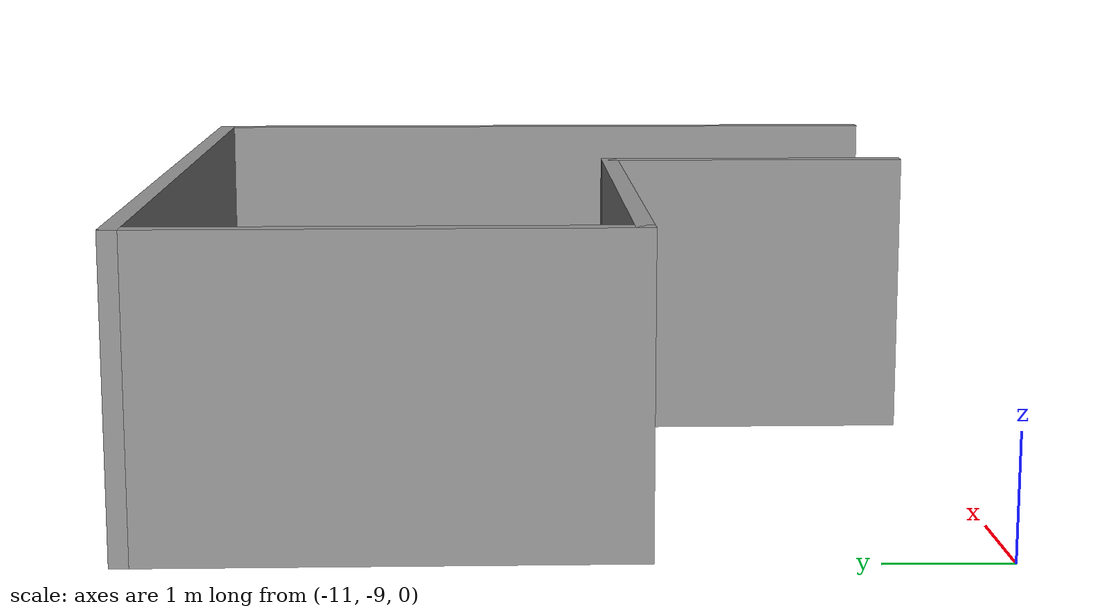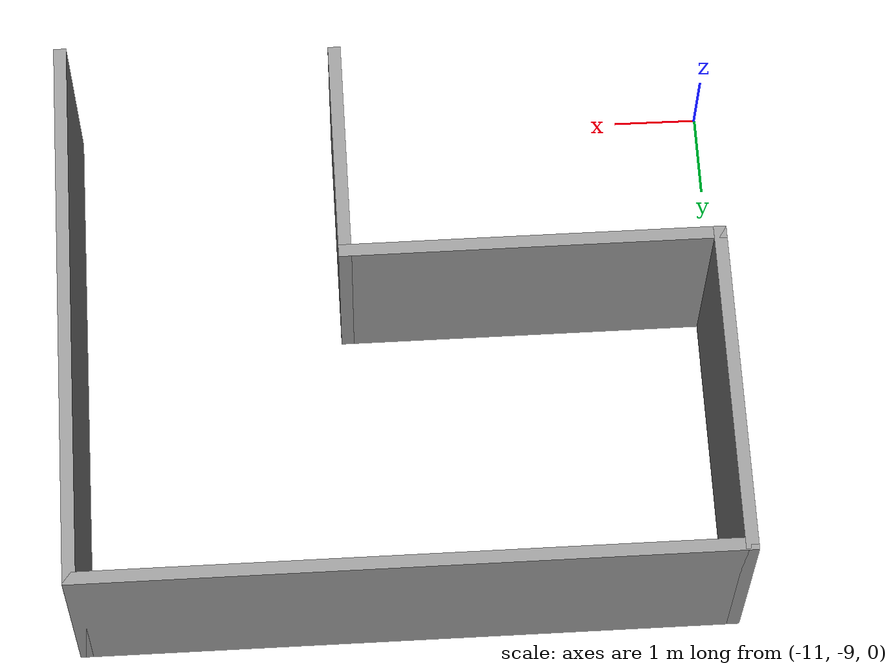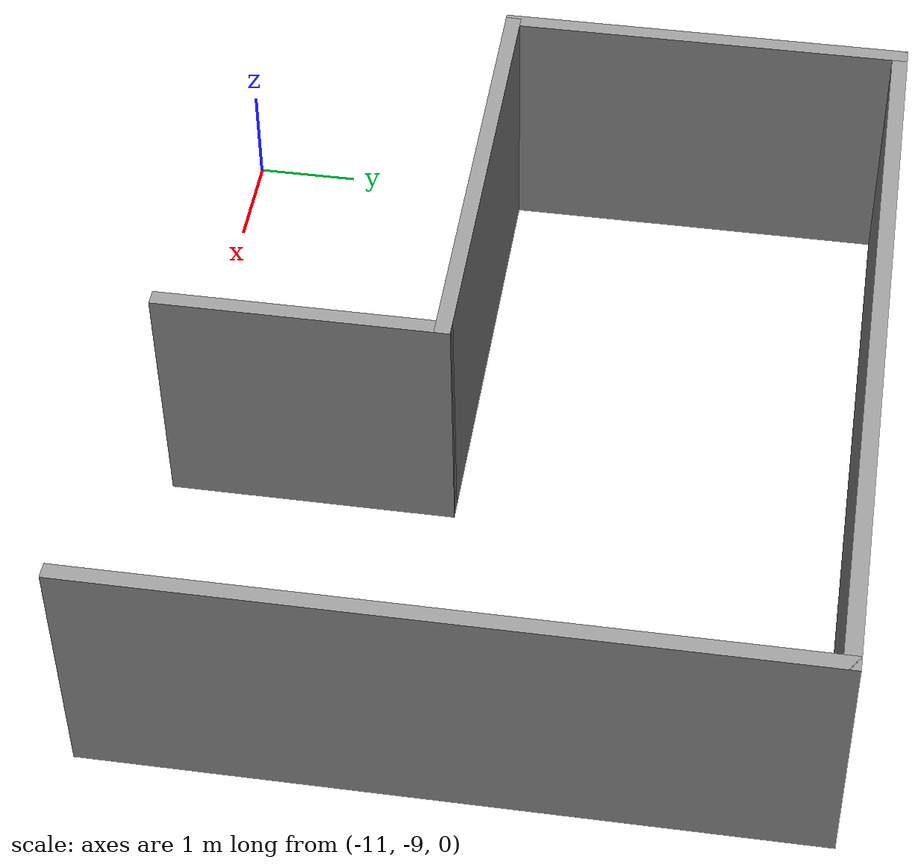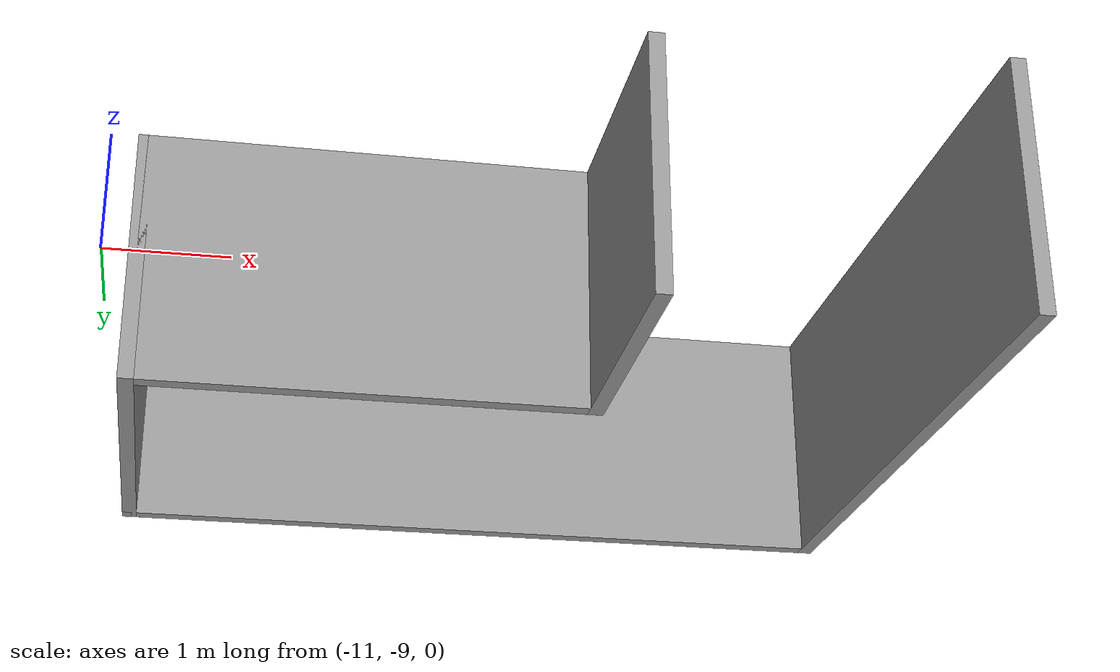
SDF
<?xml version='1.0'?>
<sdf version='1.6'>
  <model name='gazebo_test_room_1'>
    <pose frame=''>-7.05 -5.7 0 0 -0 0</pose>
    <link name='Wall_0'>
      <collision name='Wall_0_Collision'>
        <geometry>
          <box>
            <size>4 0.15 2.5</size>
          </box>
        </geometry>
        <pose frame=''>0 0 1.25 0 -0 0</pose>
      </collision>
      <visual name='Wall_0_Visual'>
        <pose frame=''>0 0 1.25 0 -0 0</pose>
        <geometry>
          <box>
            <size>4 0.15 2.5</size>
          </box>
        </geometry>
        <material>
          <script>
            <uri>file://media/materials/scripts/gazebo.material</uri>
            <name>Gazebo/Grey</name>
          </script>
          <ambient>1 1 1 1</ambient>
        </material>
        <meta>
          <layer>0</layer>
        </meta>
      </visual>
      <pose frame=''>-3.8 1.375 0 0 -0 -1.5708</pose>
    </link>
    <link name='Wall_1'>
      <collision name='Wall_1_Collision'>
        <geometry>
          <box>
            <size>4.5 0.15 2.5</size>
          </box>
        </geometry>
        <pose frame=''>0 0 1.25 0 -0 0</pose>
      </collision>
      <visual name='Wall_1_Visual'>
        <pose frame=''>0 0 1.25 0 -0 0</pose>
        <geometry>
          <box>
            <size>4.5 0.15 2.5</size>
          </box>
        </geometry>
        <material>
          <script>
            <uri>file://media/materials/scripts/gazebo.material</uri>
            <name>Gazebo/Grey</name>
          </script>
          <ambient>1 1 1 1</ambient>
        </material>
        <meta>
          <layer>0</layer>
        </meta>
      </visual>
      <pose frame=''>-1.625 -0.55 0 0 -0 0</pose>
    </link>
    <link name='Wall_2'>
      <collision name='Wall_2_Collision'>
        <geometry>
          <box>
            <size>2.75 0.15 2.5</size>
          </box>
        </geometry>
        <pose frame=''>0 0 1.25 0 -0 0</pose>
      </collision>
      <visual name='Wall_2_Visual'>
        <pose frame=''>0 0 1.25 0 -0 0</pose>
        <geometry>
          <box>
            <size>2.75 0.15 2.5</size>
          </box>
        </geometry>
        <material>
          <script>
            <uri>file://media/materials/scripts/gazebo.material</uri>
            <name>Gazebo/Grey</name>
          </script>
          <ambient>1 1 1 1</ambient>
        </material>
        <meta>
          <layer>0</layer>
        </meta>
      </visual>
      <pose frame=''>0.55 -1.85 0 0 -0 -1.5708</pose>
    </link>
    <link name='Wall_4'>
      <collision name='Wall_4_Collision'>
        <geometry>
          <box>
            <size>7.75 0.15 2.5</size>
          </box>
        </geometry>
        <pose frame=''>0 0 1.25 0 -0 0</pose>
      </collision>
      <visual name='Wall_4_Visual'>
        <pose frame=''>0 0 1.25 0 -0 0</pose>
        <geometry>
          <box>
            <size>7.75 0.15 2.5</size>
          </box>
        </geometry>
        <material>
          <script>
            <uri>file://media/materials/scripts/gazebo.material</uri>
            <name>Gazebo/Grey</name>
          </script>
          <ambient>1 1 1 1</ambient>
        </material>
        <meta>
          <layer>0</layer>
        </meta>
      </visual>
      <pose frame=''>-0 3.3 0 0 -0 0</pose>
    </link>
    <link name='Wall_5'>
      <collision name='Wall_5_Collision'>
        <geometry>
          <box>
            <size>6.75 0.15 2.5</size>
          </box>
        </geometry>
        <pose frame=''>0 0 1.25 0 -0 0</pose>
      </collision>
      <visual name='Wall_5_Visual'>
        <pose frame=''>0 0 1.25 0 -0 0</pose>
        <geometry>
          <box>
            <size>6.75 0.15 2.5</size>
          </box>
        </geometry>
        <material>
          <script>
            <uri>file://media/materials/scripts/gazebo.material</uri>
            <name>Gazebo/Grey</name>
          </script>
          <ambient>1 1 1 1</ambient>
        </material>
        <meta>
          <layer>0</layer>
        </meta>
      </visual>
      <pose frame=''>3.8 0 0 0 -0 -1.5708</pose>
    </link>
    <static>1</static>
  </model>
</sdf>
